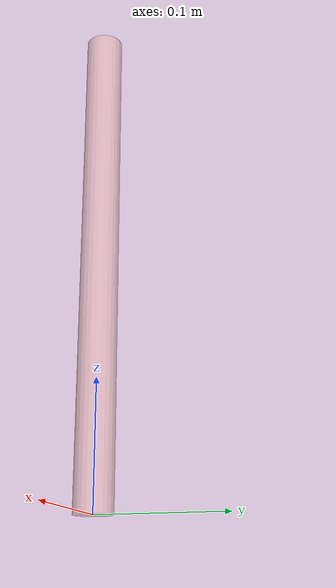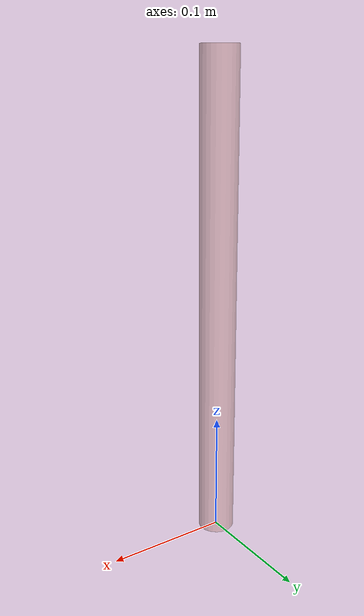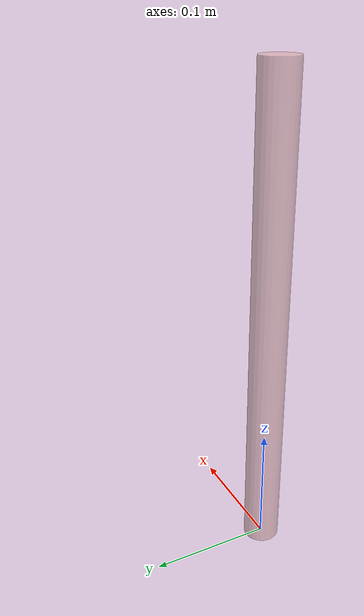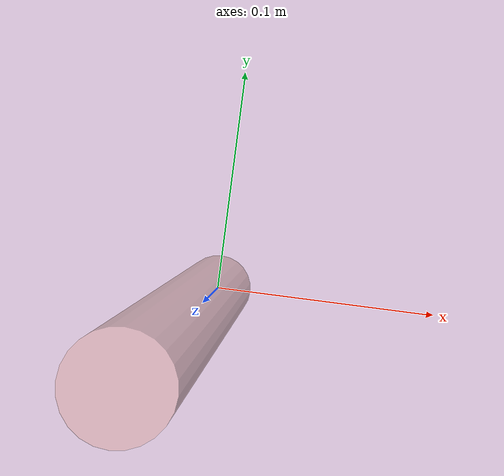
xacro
<?xml version="1.0"?>
<robot name="tee_patient" xmlns:xacro="http://www.ros.org/wiki/xacro">

  <!-- Esophagus dimensions -->
  <xacro:property name="eso_length" value="0.40"/>   <!-- 40 cm -->
  <xacro:property name="eso_radius" value="0.015"/>  <!-- 15 mm -->

  <!-- Simple material -->
  <material name="tissue">
    <color rgba="0.9 0.7 0.7 0.6"/>  <!-- semi-transparent pink -->
  </material>

  <!-- Single link representing the esophagus tube -->
  <link name="esophagus_link">
    <inertial>
      <!-- make it light; it’s static anyway -->
      <origin xyz="0 0 ${eso_length/2.0}" rpy="0 0 0"/>
      <mass value="0.1"/>
      <inertia ixx="1e-3" ixy="0.0" ixz="0.0"
               iyy="1e-3" iyz="0.0"
               izz="1e-3"/>
    </inertial>

    <!-- visual: vertical cylinder, z up -->
    <visual>
      <origin xyz="0 0 ${eso_length/2.0}" rpy="0 0 0"/>
      <geometry>
        <cylinder radius="${eso_radius}" length="${eso_length}"/>
      </geometry>
      <material name="tissue"/>
    </visual>

    <!-- collision: same as visual -->
    <collision>
      <origin xyz="0 0 ${eso_length/2.0}" rpy="0 0 0"/>
      <geometry>
        <cylinder radius="${eso_radius}" length="${eso_length}"/>
      </geometry>
    </collision>
  </link>

  <!-- Gazebo settings: make it static + tissue-like friction -->
  <gazebo reference="esophagus_link">
    <static>true</static>
    <!-- more friction than the shaft so it “grips” a bit -->
    <mu1>0.6</mu1>
    <mu2>0.6</mu2>
    <kp>5e5</kp>
    <kd>5e2</kd>
    <maxVel>0.2</maxVel>
    <minDepth>0.001</minDepth>
  </gazebo>

</robot>
